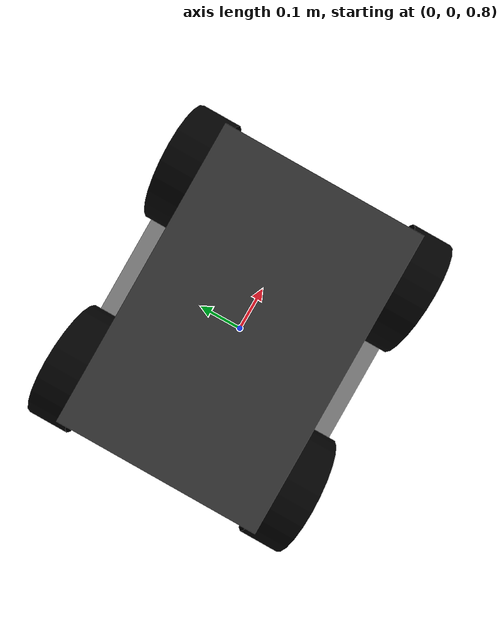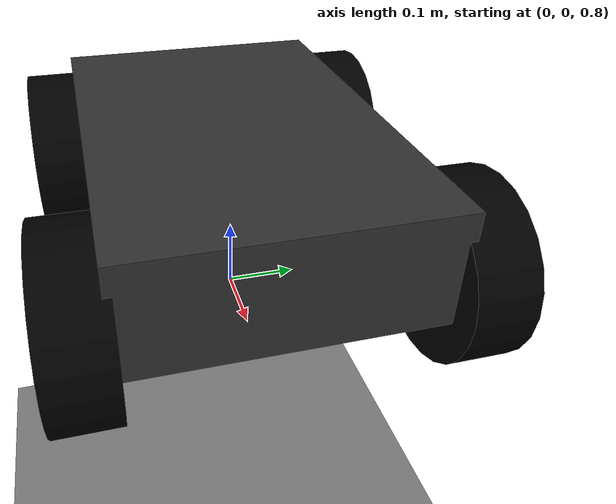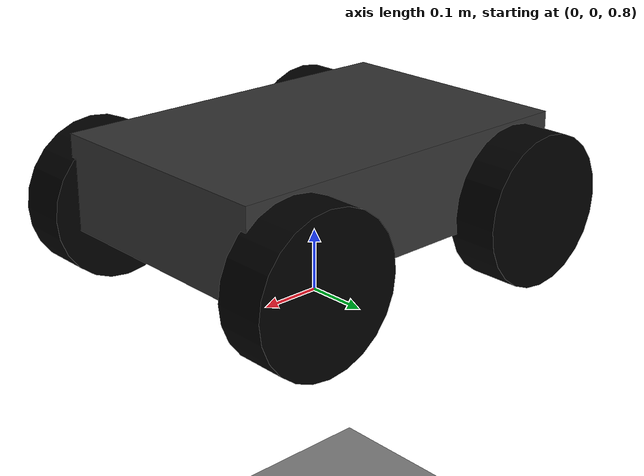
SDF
<?xml version="1.0" ?>
<sdf version="1.8">
  <world name="teknofest_dunyasi">
    <physics name="1ms" type="ignored">
      <max_step_size>0.001</max_step_size>
      <real_time_factor>1.0</real_time_factor>
    </physics>

    <plugin filename="gz-sim-physics-system" name="gz::sim::systems::Physics"></plugin>
    <plugin filename="gz-sim-user-commands-system" name="gz::sim::systems::UserCommands"></plugin>
    <plugin filename="gz-sim-scene-broadcaster-system" name="gz::sim::systems::SceneBroadcaster"></plugin>

    <plugin filename="gz-sim-sensors-system" name="gz::sim::systems::Sensors">
      <render_engine>ogre2</render_engine>
    </plugin>

    <light type="directional" name="sun">
      <cast_shadows>true</cast_shadows>
      <pose>0 0 10 0 0 0</pose>
      <diffuse>0.8 0.8 0.8 1</diffuse>
      <specular>0.2 0.2 0.2 1</specular>
      <direction>-0.5 0.1 -0.9</direction>
    </light>

    <include>
      <uri>model://teknofest_parkur</uri>
      <pose>0 0 0.1 0 0 0</pose>
    </include>

    <include>
      <uri>model://teknofest_rover</uri>
      <name>teknofest_araci</name>
      <pose>0 0 1.0 0 0 0</pose>
    </include>

  </world>
</sdf>

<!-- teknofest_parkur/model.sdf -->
<sdf version="1.8">
  <model name="teknofest_parkur">
    <static>true</static>
    <link name="link">

      <collision name="c_ground">
        <geometry>
          <box>
            <size>200 200 0.1</size>
          </box>
        </geometry>
      </collision>

      <visual name="v_ground">
        <geometry>
          <box>
            <size>200 200 0.1</size>
          </box>
        </geometry>
        <material>
          <ambient>0.5 0.5 0.5 1</ambient> <diffuse>0.5 0.5 0.5 1</diffuse>
        </material>
      </visual>

    </link>
  </model>
</sdf>

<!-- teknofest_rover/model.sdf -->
<sdf version="1.8">
  <model name='teknofest_rover'>
    <pose>0 0 0.2 0 0 0</pose>

    <link name='base_link'>
      <inertial>
        <mass>15.0</mass>
        <inertia>
          <ixx>0.4</ixx><iyy>0.7</iyy><izz>0.4</izz>
        </inertia>
      </inertial>
      <collision name='collision'>
        <geometry><box><size>0.6 0.4 0.15</size></box></geometry>
      </collision>
      <visual name='visual'>
        <geometry><box><size>0.6 0.4 0.15</size></box></geometry>
        <material><ambient>0.1 0.1 0.1 1</ambient><diffuse>0.2 0.2 0.2 1</diffuse></material>
      </visual>
    </link>

    <link name='front_left_wheel'>
      <pose>0.22 0.23 -0.05 1.5707 0 0</pose>
      <collision name='collision'>
        <geometry><cylinder><radius>0.12</radius><length>0.08</length></cylinder></geometry>
      </collision>
      <visual name='visual'>
        <geometry><cylinder><radius>0.12</radius><length>0.08</length></cylinder></geometry>
        <material><ambient>0 0 0 1</ambient><diffuse>0 0 0 1</diffuse></material>
      </visual>
    </link>

    <link name='front_right_wheel'>
      <pose>0.22 -0.23 -0.05 1.5707 0 0</pose>
      <collision name='collision'>
        <geometry><cylinder><radius>0.12</radius><length>0.08</length></cylinder></geometry>
      </collision>
      <visual name='visual'>
        <geometry><cylinder><radius>0.12</radius><length>0.08</length></cylinder></geometry>
        <material><ambient>0 0 0 1</ambient><diffuse>0 0 0 1</diffuse></material>
      </visual>
    </link>

    <link name='rear_left_wheel'>
      <pose>-0.22 0.23 -0.05 1.5707 0 0</pose>
      <collision name='collision'>
        <geometry><cylinder><radius>0.12</radius><length>0.08</length></cylinder></geometry>
      </collision>
      <visual name='visual'>
        <geometry><cylinder><radius>0.12</radius><length>0.08</length></cylinder></geometry>
        <material><ambient>0 0 0 1</ambient><diffuse>0 0 0 1</diffuse></material>
      </visual>
    </link>

    <link name='rear_right_wheel'>
      <pose>-0.22 -0.23 -0.05 1.5707 0 0</pose>
      <collision name='collision'>
        <geometry><cylinder><radius>0.12</radius><length>0.08</length></cylinder></geometry>
      </collision>
      <visual name='visual'>
        <geometry><cylinder><radius>0.12</radius><length>0.08</length></cylinder></geometry>
        <material><ambient>0 0 0 1</ambient><diffuse>0 0 0 1</diffuse></material>
      </visual>
    </link>

    <joint name='front_left_wheel_joint' type='revolute'>
      <parent>base_link</parent><child>front_left_wheel</child>
      <axis><xyz>0 0 1</xyz></axis>
    </joint>
    <joint name='front_right_wheel_joint' type='revolute'>
      <parent>base_link</parent><child>front_right_wheel</child>
      <axis><xyz>0 0 1</xyz></axis>
    </joint>
    <joint name='rear_left_wheel_joint' type='revolute'>
      <parent>base_link</parent><child>rear_left_wheel</child>
      <axis><xyz>0 0 1</xyz></axis>
    </joint>
    <joint name='rear_right_wheel_joint' type='revolute'>
      <parent>base_link</parent><child>rear_right_wheel</child>
      <axis><xyz>0 0 1</xyz></axis>
    </joint>

    <link name="lidar_link">
      <pose>0.25 0 0.1 0 0 0</pose>
      <sensor name='gpu_lidar' type='gpu_lidar'>
        <topic>scan</topic>
        <update_rate>10</update_rate>
        <lidar>
          <scan>
            <horizontal>
              <samples>640</samples>
              <resolution>1</resolution>
              <min_angle>-3.14</min_angle>
              <max_angle>3.14</max_angle>
            </horizontal>
          </scan>
          <range><min>0.15</min><max>12.0</max></range>
        </lidar>
      </sensor>
    </link>

    <plugin name="ArduPilotPlugin" filename="libArduPilotPlugin.so">
      <fdm_addr>127.0.0.1</fdm_addr>
      <fdm_port_in>9002</fdm_port_in>
      <connectionTimeoutMaxCount>5</connectionTimeoutMaxCount>
      <modelXYZToRunwayXYZ>0 0 0 0 0 0</modelXYZToRunwayXYZ>
      <gazeboXYZToNED>0 0 0 3.141593 0 0</gazeboXYZToNED>

      <control channel="0">
        <jointName>front_left_wheel_joint</jointName>
        <useServo>1</useServo>
        <multiplier>50</multiplier>
      </control>
      <control channel="0">
        <jointName>rear_left_wheel_joint</jointName>
        <useServo>1</useServo>
        <multiplier>50</multiplier>
      </control>

      <control channel="2">
        <jointName>front_right_wheel_joint</jointName>
        <useServo>1</useServo>
        <multiplier>50</multiplier>
      </control>
      <control channel="2">
        <jointName>rear_right_wheel_joint</jointName>
        <useServo>1</useServo>
        <multiplier>50</multiplier>
      </control>
    </plugin>
  </model>
</sdf>
